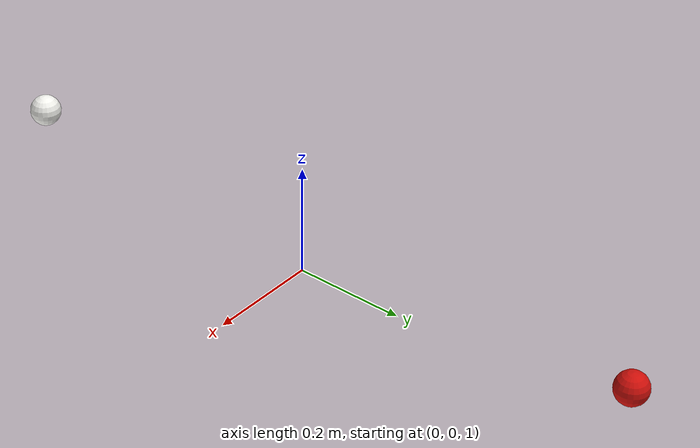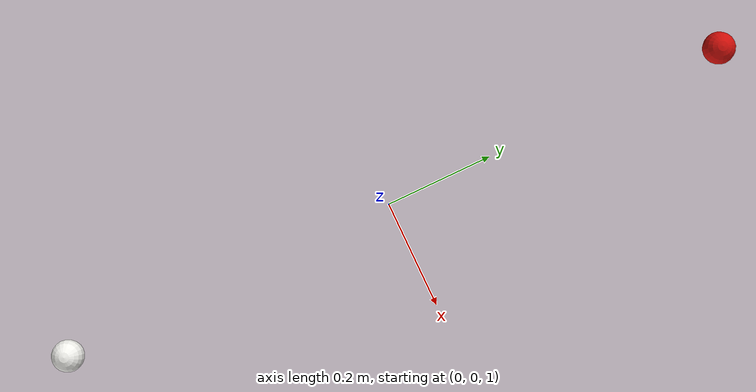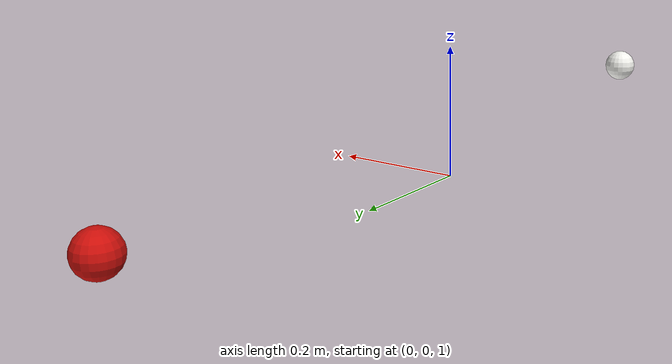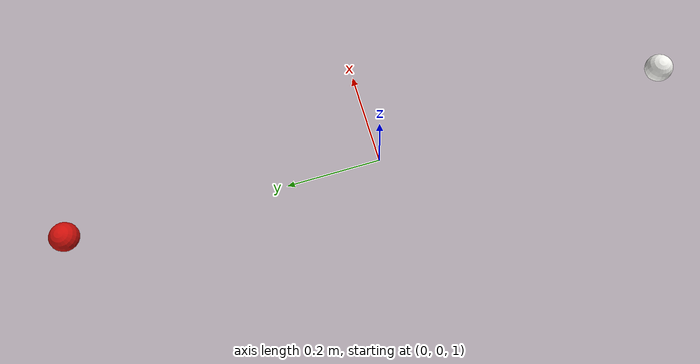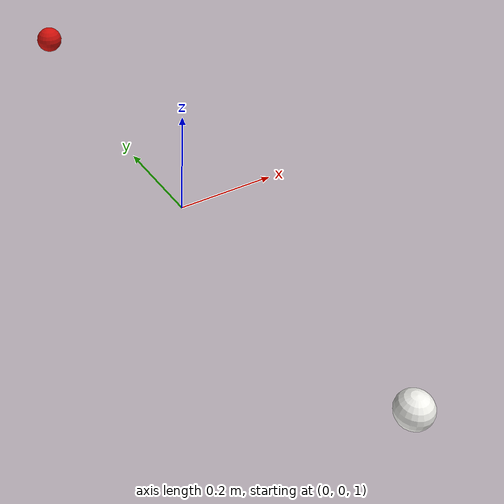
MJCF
<mujoco>
  <asset>
    <material name="gento_ball_white_mat" rgba="0.96 0.96 0.94 1"/>
    <material name="gento_ball_red_mat" rgba="0.82 0.06 0.04 1"/>
  </asset>

  <default>
    <default class="gento_pool_ball">
      <geom type="sphere" size="0.028575" mass="0.170"
            contype="2" conaffinity="7" condim="6" priority="0"
            friction="0.10 0.001 0.00028" solref="-1e7 -1000"
            solimp="0.95 0.99 0.001"/>
      <joint damping="0.0001"/>
    </default>
  </default>

  <worldbody>
    <body name="cue_ball" pos="0 -0.616 1.078575">
      <freejoint name="cue_ball_free"/>
      <geom name="cue_ball_geom" class="gento_pool_ball"
            material="gento_ball_white_mat"/>
      <site name="cue_ball_center" pos="0 0 0" size="0.004"
            rgba="0.1 0.1 1 1"/>
    </body>
    <body name="object_ball_0" pos="0 0.635 1.078575">
      <freejoint name="object_ball_0_free"/>
      <geom name="object_ball_0_geom" class="gento_pool_ball"
            material="gento_ball_red_mat"/>
    </body>
  </worldbody>
</mujoco>
